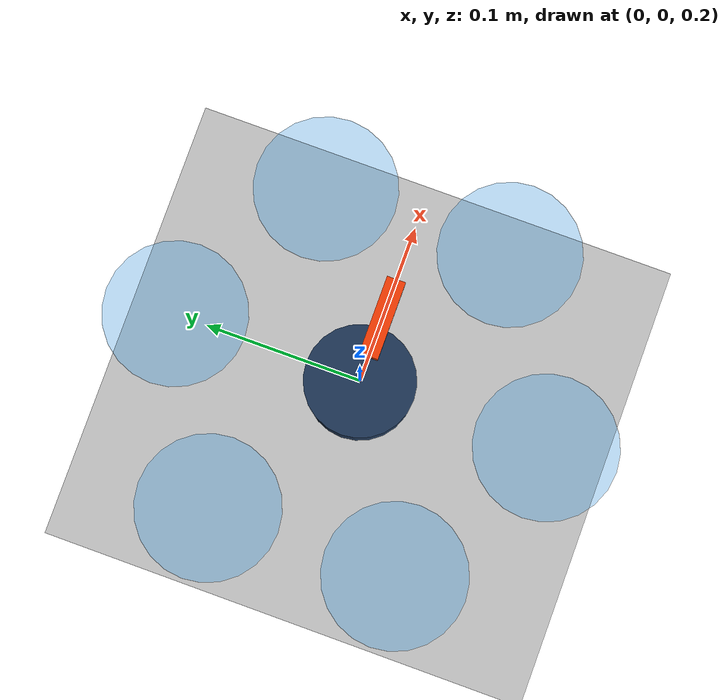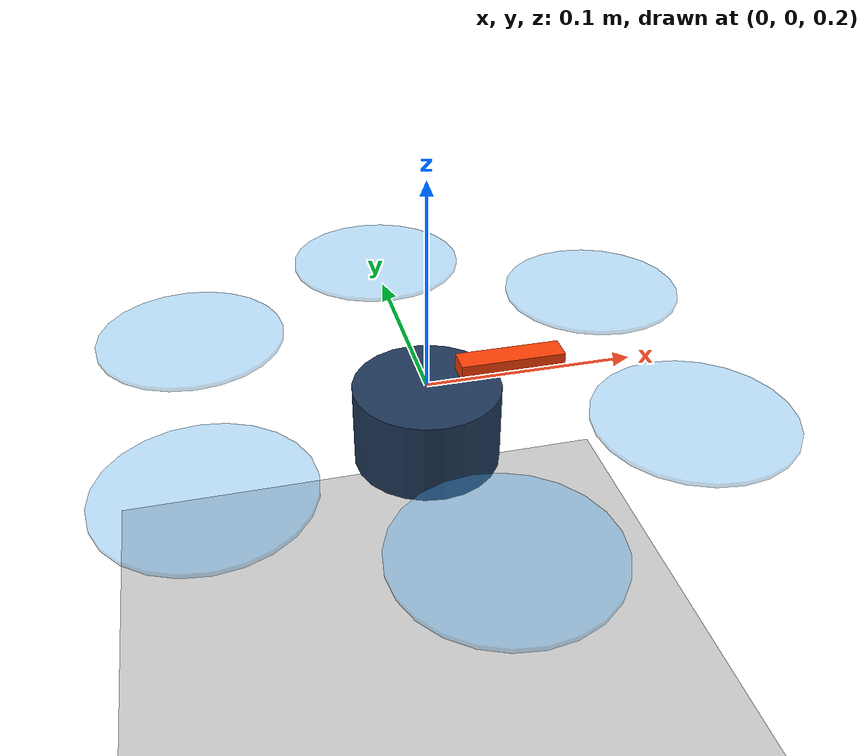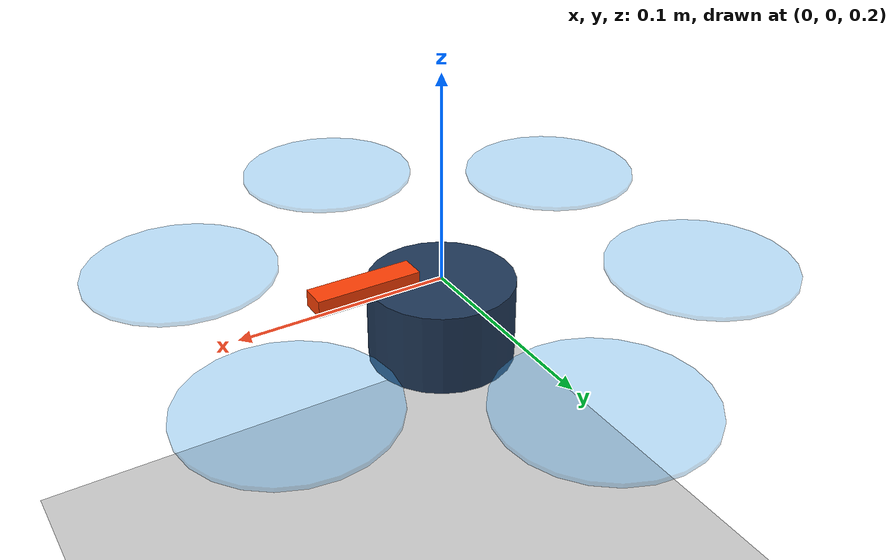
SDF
<?xml version='1.0' encoding='utf-8'?>
<sdf version="1.10">
  <world name="arachne_flight">
    <physics name="2ms" type="ignored">
      <max_step_size>0.002</max_step_size>
      <real_time_factor>1</real_time_factor>
    </physics>
    <plugin filename="gz-sim-physics-system" name="gz::sim::systems::Physics" />
    <plugin filename="gz-sim-scene-broadcaster-system" name="gz::sim::systems::SceneBroadcaster" />
    <plugin filename="gz-sim-user-commands-system" name="gz::sim::systems::UserCommands" />
    <plugin filename="gz-sim-apply-link-wrench-system" name="gz::sim::systems::ApplyLinkWrench" />
    <light type="directional" name="sun">
      <pose>0 0 10 0 0 0</pose>
      <direction>-0.5 0.1 -0.9</direction>
    </light>
    <model name="ground">
      <static>true</static>
      <link name="link">
        <collision name="collision">
          <geometry>
            <plane>
              <normal>0 0 1</normal>
              <size>20 20</size>
            </plane>
          </geometry>
        </collision>
        <visual name="visual">
          <geometry>
            <plane>
              <normal>0 0 1</normal>
              <size>20 20</size>
            </plane>
          </geometry>
        </visual>
      </link>
    </model>
    <model name="arachne_flight_hex">
      <pose>0 0 0.18 0 0 0</pose>
      <link name="base_link">
        <inertial>
          <mass>0.62</mass>
          <inertia>
            <ixx>0.004</ixx>
            <iyy>0.004</iyy>
            <izz>0.007</izz>
          </inertia>
        </inertial>
        <collision name="body_collision">
          <geometry>
            <cylinder>
              <radius>0.035</radius>
              <length>0.04</length>
            </cylinder>
          </geometry>
        </collision>
        <visual name="body_visual">
          <geometry>
            <cylinder>
              <radius>0.035</radius>
              <length>0.04</length>
            </cylinder>
          </geometry>
          <material>
            <diffuse>0.12 0.22 0.35 1</diffuse>
          </material>
        </visual>
        <visual name="nose_positive_x">
          <pose>0.04 0 0.027 0 0 0</pose>
          <geometry>
            <box>
              <size>0.05 0.012 0.008</size>
            </box>
          </geometry>
          <material>
            <diffuse>1 0.25 0.02 1</diffuse>
            <ambient>1 0.25 0.02 1</ambient>
          </material>
        </visual>
      </link>
      <link name="rotor_0">
        <pose relative_to="base_link">0.103923048 0.060000000 0.025 0 0 0</pose>
        <inertial>
          <mass>0.005</mass>
          <inertia>
            <ixx>0.00001</ixx>
            <iyy>0.00001</iyy>
            <izz>0.00002</izz>
          </inertia>
        </inertial>
        <visual name="visual">
          <geometry>
            <cylinder>
              <radius>0.045</radius>
              <length>0.002</length>
            </cylinder>
          </geometry>
          <material>
            <diffuse>0.25 0.65 0.95 0.35</diffuse>
          </material>
        </visual>
      </link>
      <joint name="rotor_0_joint" type="revolute">
        <parent>base_link</parent>
        <child>rotor_0</child>
        <axis>
          <xyz>0 0 1</xyz>
        </axis>
      </joint>
      <plugin filename="gz-sim-multicopter-motor-model-system" name="gz::sim::systems::MulticopterMotorModel">
        <robotNamespace>arachne_hx6</robotNamespace>
        <jointName>rotor_0_joint</jointName>
        <linkName>rotor_0</linkName>
        <turningDirection>ccw</turningDirection>
        <timeConstantUp>0.0182</timeConstantUp>
        <timeConstantDown>0.0182</timeConstantDown>
        <maxRotVelocity>1000</maxRotVelocity>
        <motorConstant>1.269e-05</motorConstant>
        <momentConstant>0.016754</momentConstant>
        <commandSubTopic>command/motor_speed</commandSubTopic>
        <actuator_number>0</actuator_number>
        <rotorDragCoefficient>0</rotorDragCoefficient>
        <rollingMomentCoefficient>0</rollingMomentCoefficient>
        <motorSpeedPubTopic>motor_speed/0</motorSpeedPubTopic>
        <rotorVelocitySlowdownSim>2</rotorVelocitySlowdownSim>
        <motorType>velocity</motorType>
      </plugin>
      <link name="rotor_1">
        <pose relative_to="base_link">0.000000000 0.120000000 0.025 0 0 0</pose>
        <inertial>
          <mass>0.005</mass>
          <inertia>
            <ixx>0.00001</ixx>
            <iyy>0.00001</iyy>
            <izz>0.00002</izz>
          </inertia>
        </inertial>
        <visual name="visual">
          <geometry>
            <cylinder>
              <radius>0.045</radius>
              <length>0.002</length>
            </cylinder>
          </geometry>
          <material>
            <diffuse>0.25 0.65 0.95 0.35</diffuse>
          </material>
        </visual>
      </link>
      <joint name="rotor_1_joint" type="revolute">
        <parent>base_link</parent>
        <child>rotor_1</child>
        <axis>
          <xyz>0 0 1</xyz>
        </axis>
      </joint>
      <plugin filename="gz-sim-multicopter-motor-model-system" name="gz::sim::systems::MulticopterMotorModel">
        <robotNamespace>arachne_hx6</robotNamespace>
        <jointName>rotor_1_joint</jointName>
        <linkName>rotor_1</linkName>
        <turningDirection>cw</turningDirection>
        <timeConstantUp>0.0182</timeConstantUp>
        <timeConstantDown>0.0182</timeConstantDown>
        <maxRotVelocity>1000</maxRotVelocity>
        <motorConstant>1.269e-05</motorConstant>
        <momentConstant>0.016754</momentConstant>
        <commandSubTopic>command/motor_speed</commandSubTopic>
        <actuator_number>1</actuator_number>
        <rotorDragCoefficient>0</rotorDragCoefficient>
        <rollingMomentCoefficient>0</rollingMomentCoefficient>
        <motorSpeedPubTopic>motor_speed/1</motorSpeedPubTopic>
        <rotorVelocitySlowdownSim>2</rotorVelocitySlowdownSim>
        <motorType>velocity</motorType>
      </plugin>
      <link name="rotor_2">
        <pose relative_to="base_link">-0.103923048 0.060000000 0.025 0 0 0</pose>
        <inertial>
          <mass>0.005</mass>
          <inertia>
            <ixx>0.00001</ixx>
            <iyy>0.00001</iyy>
            <izz>0.00002</izz>
          </inertia>
        </inertial>
        <visual name="visual">
          <geometry>
            <cylinder>
              <radius>0.045</radius>
              <length>0.002</length>
            </cylinder>
          </geometry>
          <material>
            <diffuse>0.25 0.65 0.95 0.35</diffuse>
          </material>
        </visual>
      </link>
      <joint name="rotor_2_joint" type="revolute">
        <parent>base_link</parent>
        <child>rotor_2</child>
        <axis>
          <xyz>0 0 1</xyz>
        </axis>
      </joint>
      <plugin filename="gz-sim-multicopter-motor-model-system" name="gz::sim::systems::MulticopterMotorModel">
        <robotNamespace>arachne_hx6</robotNamespace>
        <jointName>rotor_2_joint</jointName>
        <linkName>rotor_2</linkName>
        <turningDirection>ccw</turningDirection>
        <timeConstantUp>0.0182</timeConstantUp>
        <timeConstantDown>0.0182</timeConstantDown>
        <maxRotVelocity>1000</maxRotVelocity>
        <motorConstant>1.269e-05</motorConstant>
        <momentConstant>0.016754</momentConstant>
        <commandSubTopic>command/motor_speed</commandSubTopic>
        <actuator_number>2</actuator_number>
        <rotorDragCoefficient>0</rotorDragCoefficient>
        <rollingMomentCoefficient>0</rollingMomentCoefficient>
        <motorSpeedPubTopic>motor_speed/2</motorSpeedPubTopic>
        <rotorVelocitySlowdownSim>2</rotorVelocitySlowdownSim>
        <motorType>velocity</motorType>
      </plugin>
      <link name="rotor_3">
        <pose relative_to="base_link">-0.103923048 -0.060000000 0.025 0 0 0</pose>
        <inertial>
          <mass>0.005</mass>
          <inertia>
            <ixx>0.00001</ixx>
            <iyy>0.00001</iyy>
            <izz>0.00002</izz>
          </inertia>
        </inertial>
        <visual name="visual">
          <geometry>
            <cylinder>
              <radius>0.045</radius>
              <length>0.002</length>
            </cylinder>
          </geometry>
          <material>
            <diffuse>0.25 0.65 0.95 0.35</diffuse>
          </material>
        </visual>
      </link>
      <joint name="rotor_3_joint" type="revolute">
        <parent>base_link</parent>
        <child>rotor_3</child>
        <axis>
          <xyz>0 0 1</xyz>
        </axis>
      </joint>
      <plugin filename="gz-sim-multicopter-motor-model-system" name="gz::sim::systems::MulticopterMotorModel">
        <robotNamespace>arachne_hx6</robotNamespace>
        <jointName>rotor_3_joint</jointName>
        <linkName>rotor_3</linkName>
        <turningDirection>cw</turningDirection>
        <timeConstantUp>0.0182</timeConstantUp>
        <timeConstantDown>0.0182</timeConstantDown>
        <maxRotVelocity>1000</maxRotVelocity>
        <motorConstant>1.269e-05</motorConstant>
        <momentConstant>0.016754</momentConstant>
        <commandSubTopic>command/motor_speed</commandSubTopic>
        <actuator_number>3</actuator_number>
        <rotorDragCoefficient>0</rotorDragCoefficient>
        <rollingMomentCoefficient>0</rollingMomentCoefficient>
        <motorSpeedPubTopic>motor_speed/3</motorSpeedPubTopic>
        <rotorVelocitySlowdownSim>2</rotorVelocitySlowdownSim>
        <motorType>velocity</motorType>
      </plugin>
      <link name="rotor_4">
        <pose relative_to="base_link">-0.000000000 -0.120000000 0.025 0 0 0</pose>
        <inertial>
          <mass>0.005</mass>
          <inertia>
            <ixx>0.00001</ixx>
            <iyy>0.00001</iyy>
            <izz>0.00002</izz>
          </inertia>
        </inertial>
        <visual name="visual">
          <geometry>
            <cylinder>
              <radius>0.045</radius>
              <length>0.002</length>
            </cylinder>
          </geometry>
          <material>
            <diffuse>0.25 0.65 0.95 0.35</diffuse>
          </material>
        </visual>
      </link>
      <joint name="rotor_4_joint" type="revolute">
        <parent>base_link</parent>
        <child>rotor_4</child>
        <axis>
          <xyz>0 0 1</xyz>
        </axis>
      </joint>
      <plugin filename="gz-sim-multicopter-motor-model-system" name="gz::sim::systems::MulticopterMotorModel">
        <robotNamespace>arachne_hx6</robotNamespace>
        <jointName>rotor_4_joint</jointName>
        <linkName>rotor_4</linkName>
        <turningDirection>ccw</turningDirection>
        <timeConstantUp>0.0182</timeConstantUp>
        <timeConstantDown>0.0182</timeConstantDown>
        <maxRotVelocity>1000</maxRotVelocity>
        <motorConstant>1.269e-05</motorConstant>
        <momentConstant>0.016754</momentConstant>
        <commandSubTopic>command/motor_speed</commandSubTopic>
        <actuator_number>4</actuator_number>
        <rotorDragCoefficient>0</rotorDragCoefficient>
        <rollingMomentCoefficient>0</rollingMomentCoefficient>
        <motorSpeedPubTopic>motor_speed/4</motorSpeedPubTopic>
        <rotorVelocitySlowdownSim>2</rotorVelocitySlowdownSim>
        <motorType>velocity</motorType>
      </plugin>
      <link name="rotor_5">
        <pose relative_to="base_link">0.103923048 -0.060000000 0.025 0 0 0</pose>
        <inertial>
          <mass>0.005</mass>
          <inertia>
            <ixx>0.00001</ixx>
            <iyy>0.00001</iyy>
            <izz>0.00002</izz>
          </inertia>
        </inertial>
        <visual name="visual">
          <geometry>
            <cylinder>
              <radius>0.045</radius>
              <length>0.002</length>
            </cylinder>
          </geometry>
          <material>
            <diffuse>0.25 0.65 0.95 0.35</diffuse>
          </material>
        </visual>
      </link>
      <joint name="rotor_5_joint" type="revolute">
        <parent>base_link</parent>
        <child>rotor_5</child>
        <axis>
          <xyz>0 0 1</xyz>
        </axis>
      </joint>
      <plugin filename="gz-sim-multicopter-motor-model-system" name="gz::sim::systems::MulticopterMotorModel">
        <robotNamespace>arachne_hx6</robotNamespace>
        <jointName>rotor_5_joint</jointName>
        <linkName>rotor_5</linkName>
        <turningDirection>cw</turningDirection>
        <timeConstantUp>0.0182</timeConstantUp>
        <timeConstantDown>0.0182</timeConstantDown>
        <maxRotVelocity>1000</maxRotVelocity>
        <motorConstant>1.269e-05</motorConstant>
        <momentConstant>0.016754</momentConstant>
        <commandSubTopic>command/motor_speed</commandSubTopic>
        <actuator_number>5</actuator_number>
        <rotorDragCoefficient>0</rotorDragCoefficient>
        <rollingMomentCoefficient>0</rollingMomentCoefficient>
        <motorSpeedPubTopic>motor_speed/5</motorSpeedPubTopic>
        <rotorVelocitySlowdownSim>2</rotorVelocitySlowdownSim>
        <motorType>velocity</motorType>
      </plugin>
      <plugin filename="gz-sim-odometry-publisher-system" name="gz::sim::systems::OdometryPublisher">
        <dimensions>3</dimensions>
      </plugin>
    </model>
  </world>
</sdf>
